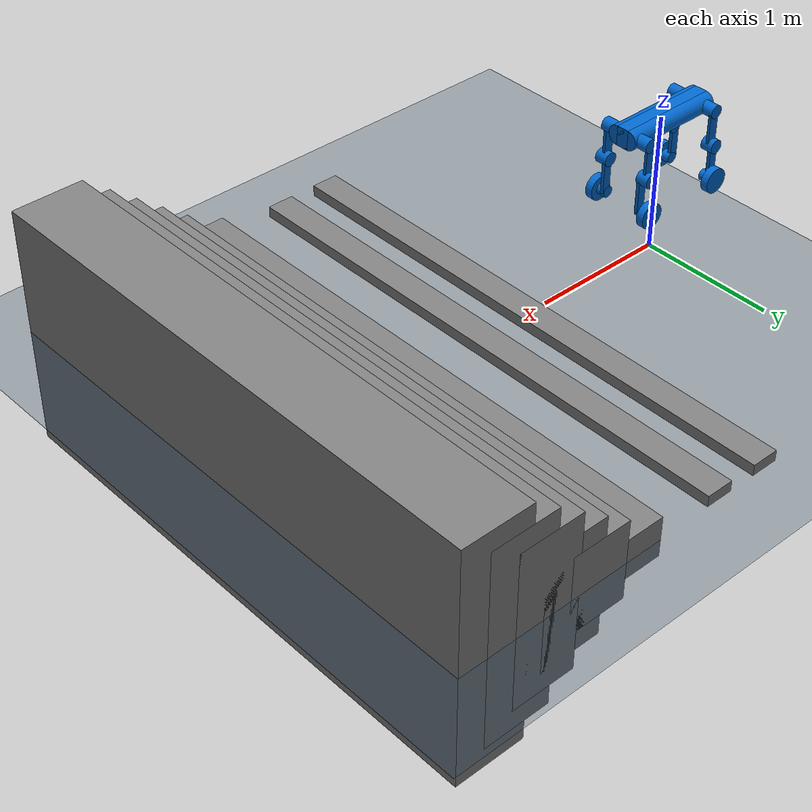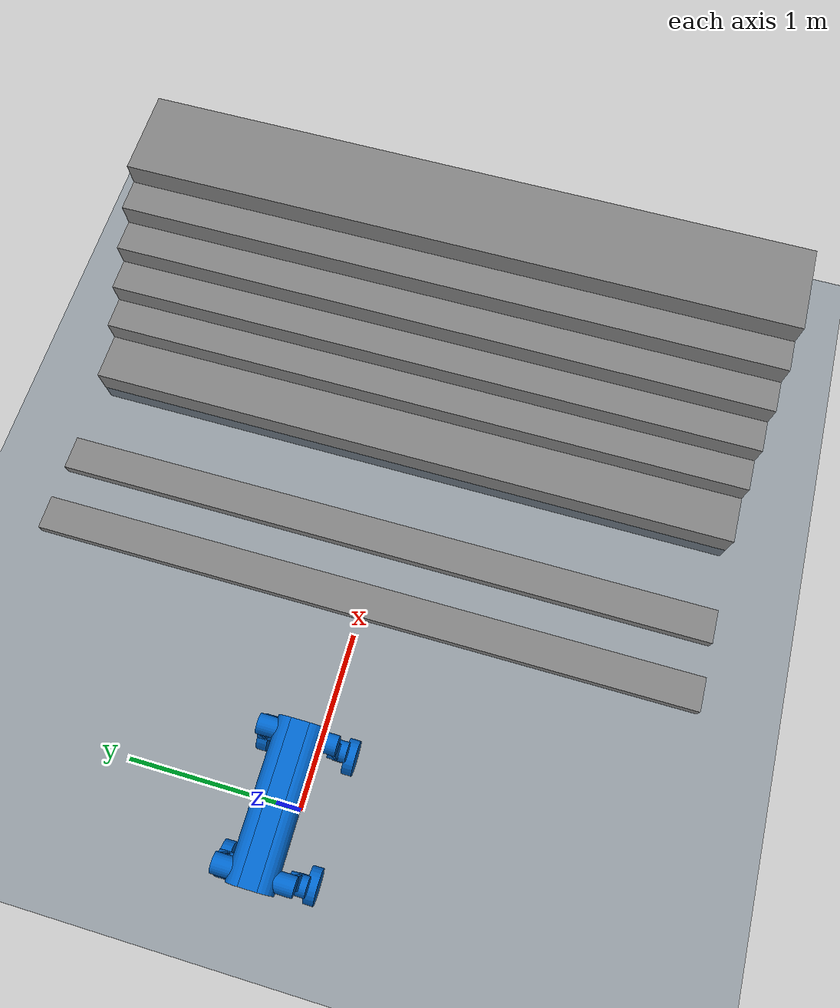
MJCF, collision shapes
<mujoco model="m20 scene">
  <include file="m20.xml"/>

  <statistic center="0 0 0.1" extent="0.8"/>

  <visual>
    <headlight diffuse="0.6 0.6 0.6" ambient="0.3 0.3 0.3" specular="0 0 0"/>
    <rgba haze="0.15 0.25 0.35 1"/>
    <global azimuth="-130" elevation="-20"/>
  </visual>

  <asset>
    <texture type="skybox" builtin="gradient" rgb1="0.3 0.5 0.7" rgb2="0 0 0" width="512" height="3072"/>
    <texture type="2d" name="groundplane" builtin="checker" mark="edge" rgb1="0.2 0.3 0.4" rgb2="0.1 0.2 0.3"
      markrgb="0.8 0.8 0.8" width="300" height="300"/>
    <material name="groundplane" texture="groundplane" texuniform="true" texrepeat="5 5" reflectance="0.2"/>
  </asset>

  <worldbody>
    <light pos="0 0 1.5" dir="0 0 -1" directional="true"/>
    <geom name="floor" size="0 0 0.05" type="plane" material="groundplane"/>

    <geom pos="1.2 0 0.04" type="box"  size="0.1 2 0.04" quat="1.0 0 0 0"/>
    <geom pos="1.6 0 0.04" type="box"  size="0.1 2 0.04" quat="1.0 0 0 0"/>

    <geom pos="2.3 0 0.02" type="box"  size="0.2 2 0.15" quat="1.0 0 0 0"/>
    <geom pos="2.6 0 0.02" type="box"  size="0.22 2 0.3" quat="1.0 0 0 0"/>
    <geom pos="2.8 0 0.02" type="box"  size="0.23 2 0.45" quat="1.0 0 0 0"/>
    <geom pos="3 0 0.02" type="box"  size="0.24 2 0.6" quat="1.0 0 0 0"/>
    <geom pos="3.2 0 0.02" type="box"  size="0.25 2 0.75" quat="1.0 0 0 0"/>
    <geom pos="3.4 0 0.02" type="box"  size="0.26 2 0.9" quat="1.0 0 0 0"/>
  </worldbody>
</mujoco>

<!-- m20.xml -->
<mujoco model="m20">

    <default>
        <default class="robot">
            <default class="motor">
                <joint/>
                <motor/>
            </default>
            <default class="visual">
                <geom material="default_material" contype="0" conaffinity="0" group="2"/>
            </default>
            <default class="collision">
                <geom material="collision_material" condim="3" contype="1" conaffinity="1" solref="0.005 1" friction="1 0.01 0.001" density="0" group="1"/>
            </default>
        </default>
    </default>

    <compiler angle="radian" meshdir="../meshes/"/>
    <compiler autolimits="true"/>

    <asset>
        <material name="default_material" rgba="0.7 0.7 0.7 1"/>
        <material name="collision_material" rgba="0.0 0.4 0.8 0.0"/>
        <mesh name="base_link" file="base_link.STL"/>
        <mesh name="fl_hipx" file="fl_hipx.STL"/>
        <mesh name="fl_hipy" file="fl_hipy.STL"/>
        <mesh name="fl_knee" file="fl_knee.STL"/>
        <mesh name="fl_wheel" file="fl_wheel.STL"/>
        <mesh name="fr_hipx" file="fr_hipx.STL"/>
        <mesh name="fr_hipy" file="fr_hipy.STL"/>
        <mesh name="fr_knee" file="fr_knee.STL"/>
        <mesh name="fr_wheel" file="fr_wheel.STL"/>
        <mesh name="hl_hipx" file="hl_hipx.STL"/>
        <mesh name="hl_hipy" file="hl_hipy.STL"/>
        <mesh name="hl_knee" file="hl_knee.STL"/>
        <mesh name="hl_wheel" file="hl_wheel.STL"/>
        <mesh name="hr_hipx" file="hr_hipx.STL"/>
        <mesh name="hr_hipy" file="hr_hipy.STL"/>
        <mesh name="hr_knee" file="hr_knee.STL"/>
        <mesh name="hr_wheel" file="hr_wheel.STL"/>
        <texture name="texplane" type="2d" builtin="checker" rgb1=".2 .3 .4" rgb2=".1 0.15 0.2" width="512" height="512"/>
        <material name='MatPlane' reflectance='0.3' texture="texplane" texrepeat="1 1" texuniform="true"/>
    </asset>

    <worldbody>
        <body name="base_link" pos="0 0. 1." quat="1 0 0 0" childclass="robot">
            <freejoint name="floating_base"/>
            <inertial pos="0.00355105878308153 0.0016507579200937 -0.00346462146571654" quat="1 0 0 0" mass="15.882" diaginertia="0.087919 0.533522 0.563492"/>

            <site name="imu_site" pos="0.0632 -0.0268 -0.0435" size="0.005" rgba="1 0 0 1"/>
            <site name="base_site" pos="0 0 0" quat="1 0 0 0"/>

            <geom type="mesh" mesh="base_link" class="visual"/>
            <geom size="0.375 0.045 0.07" type="box" class="collision"/>
            <geom size="0.07 0.375" pos="0 0.045 0" quat="0.707107 0 0.707107 0" type="cylinder" class="collision"/>
            <geom size="0.07 0.375" pos="0 -0.045 0" quat="0.707107 0 0.707107 0" type="cylinder" class="collision"/>

            <body name="fl_hipx" pos="0.3141 0.0685 0">
                <inertial pos="-0.0111893 0.00891693 0.000405666" quat="0.581628 0.481707 0.465607 0.461387" mass="0.259964" diaginertia="0.000374402 0.000286289 0.000179309"/>
                <joint name="fl_hipx_joint" pos="0 0 0" axis="1 0 0" range="-0.611 0.436" actuatorfrcrange="-76.4 76.4"/>
                <geom type="mesh" mesh="fl_hipx" class="visual"/>
                <geom size="0.048 0.07" pos="0 0.055 0" quat="0.707107 0.707107 0 0" type="cylinder" class="collision"/>
                <body name="fl_hipy">
                    <inertial pos="-0.00199375 0.098439 -0.130664" quat="0.6754 -0.0565887 0.0622156 0.73264" mass="2.618" diaginertia="0.0410181 0.0408067 0.00297328"/>
                    <joint name="fl_hipy_joint" pos="0 0 0" axis="0 1 0" range="-2.583 2.286" actuatorfrcrange="-76.4 76.4"/>
                    <geom type="mesh" mesh="fl_hipy" class="visual"/>
                    <geom size="0.035 0.01 0.125" pos="-0.01 0.11 -0.125" type="box" class="collision"/>
                    <geom size="0.05 0.045" pos="0 0.11 -0.25" quat="0.707107 0.707107 0 0" type="cylinder" class="collision"/>
                    <body name="fl_knee" pos="0 0.0984 -0.25">
                        <inertial pos="0.00341917 0.00269124 -0.181265" quat="0.633405 -0.0508555 0.0475887 0.77068" mass="1.145" diaginertia="0.0121304 0.0117245 0.000948105"/>
                        <joint name="fl_knee_joint" pos="0 0 0" axis="0 1 0" range="-2.792 2.809" actuatorfrcrange="-76.4 76.4"/>
                        <geom type="mesh" mesh="fl_knee" class="visual"/>
                        <geom size="0.03 0.0125 0.125" pos="0.015 -0.015 -0.125" type="box" class="collision"/>
                        <geom size="0.04 0.05" pos="0 0.02 -0.25" quat="0.707107 0.707107 0 0" type="cylinder" class="collision"/>
                        <body name="fl_wheel" pos="0 0.059676 -0.25">
                            <inertial pos="-3.11398e-07 0.000279002 5.70329e-07" quat="0.707107 0 0 0.707107" mass="0.638" diaginertia="0.002853 0.001535 0.001535"/>
                            <joint name="fl_wheel_joint" pos="0 0 0" axis="0 1 0" actuatorfrcrange="-21.6 21.6"/>
                            <geom type="mesh" mesh="fl_wheel" class="visual"/>
                            <geom size="0.09 0.027" quat="0.707107 0.707107 0 0" type="cylinder" class="collision"/>
                        </body>
                    </body>
                </body>
            </body>
            <body name="fr_hipx" pos="0.3141 -0.0685 0">
                <inertial pos="-0.0110901 -0.00875035 0.000521421" quat="0.461387 0.465607 0.481707 0.581628" mass="0.259964" diaginertia="0.000374402 0.000286289 0.000179309"/>
                <joint name="fr_hipx_joint" pos="0 0 0" axis="1 0 0" range="-0.436 0.611" actuatorfrcrange="-76.4 76.4"/>
                <geom type="mesh" mesh="fr_hipx" class="visual"/>
                <geom size="0.048 0.07" pos="0 -0.055 0" quat="0.707107 0.707107 0 0" type="cylinder" class="collision"/>
                <body name="fr_hipy">
                    <inertial pos="-0.00229992 -0.0989709 -0.130925" quat="0.6964 0.0586688 -0.0587886 0.712831" mass="2.618" diaginertia="0.0407542 0.040538 0.00301281"/>
                    <joint name="fr_hipy_joint" pos="0 0 0" axis="0 1 0" range="-2.583 2.286" actuatorfrcrange="-76.4 76.4"/>
                    <geom type="mesh" mesh="fr_hipy" class="visual"/>
                    <geom size="0.035 0.01 0.125" pos="-0.01 -0.11 -0.125" type="box" class="collision"/>
                    <geom size="0.05 0.045" pos="0 -0.11 -0.25" quat="0.707107 0.707107 0 0" type="cylinder" class="collision"/>
                    <body name="fr_knee" pos="0 -0.0984 -0.25">
                        <inertial pos="0.00354945 -0.00247884 -0.180089" quat="0.769194 0.0472982 -0.0504711 0.635261" mass="1.145" diaginertia="0.0122564 0.0118448 0.000951718"/>
                        <joint name="fr_knee_joint" pos="0 0 0" axis="0 1 0" range="-2.792 2.809" actuatorfrcrange="-76.4 76.4"/>
                        <geom type="mesh" mesh="fr_knee" class="visual"/>
                        <geom size="0.03 0.0125 0.125" pos="0.015 0.015 -0.125" type="box" class="collision"/>
                        <geom size="0.04 0.05" pos="0 -0.02 -0.25" quat="0.707107 0.707107 0 0" type="cylinder" class="collision"/>
                        <body name="fr_wheel" pos="0 -0.059676 -0.25">
                            <inertial pos="-6.47327e-07 -0.000279012 -4.6242e-08" quat="0.707107 0 0 0.707107" mass="0.638" diaginertia="0.002853 0.001535 0.001535"/>
                            <joint name="fr_wheel_joint" pos="0 0 0" axis="0 1 0" actuatorfrcrange="-21.6 21.6"/>
                            <geom type="mesh" mesh="fr_wheel" class="visual"/>
                            <geom size="0.09 0.027" quat="0.707107 0.707107 0 0" type="cylinder" class="collision"/>
                        </body>
                    </body>
                </body>
            </body>
            <body name="hl_hipx" pos="-0.3141 0.0685 0">
                <inertial pos="0.0110901 0.00875014 0.000524884" quat="0.465607 0.461387 0.581628 0.481707" mass="0.259964" diaginertia="0.000374402 0.000286289 0.000179309"/>
                <joint name="hl_hipx_joint" pos="0 0 0" axis="1 0 0" range="-0.611 0.436" actuatorfrcrange="-76.4 76.4"/>
                <geom type="mesh" mesh="hl_hipx" class="visual"/>
                <geom size="0.048 0.07" pos="0 0.055 0" quat="0.707107 0.707107 0 0" type="cylinder" class="collision"/>
                <body name="hl_hipy">
                    <inertial pos="0.00204343 0.0990227 -0.130697" quat="0.750359 -0.0628584 0.0546506 0.655761" mass="2.618" diaginertia="0.0408376 0.0406211 0.00299727"/>
                    <joint name="hl_hipy_joint" pos="0 0 0" axis="0 1 0" range="-2.286 2.583" actuatorfrcrange="-76.4 76.4"/>
                    <geom type="mesh" mesh="hl_hipy" class="visual"/>
                    <geom size="0.035 0.01 0.125" pos="0.01 0.11 -0.125" type="box" class="collision"/>
                    <geom size="0.05 0.045" pos="0 0.11 -0.25" quat="0.707107 0.707107 0 0" type="cylinder" class="collision"/>
                    <body name="hl_knee" pos="0 0.0984 -0.25">
                        <inertial pos="-0.00354945 0.00247885 -0.180089" quat="0.769194 -0.0472982 0.0504711 0.635261" mass="1.145" diaginertia="0.0122564 0.0118448 0.000951718"/>
                        <joint name="hl_knee_joint" pos="0 0 0" axis="0 1 0" range="-2.809 2.792" actuatorfrcrange="-76.4 76.4"/>
                        <geom type="mesh" mesh="hl_knee" class="visual"/>
                        <geom size="0.03 0.0125 0.125" pos="-0.015 0.015 -0.125" type="box" class="collision"/>
                        <geom size="0.04 0.05" pos="0 0.02 -0.25" quat="0.707107 0.707107 0 0" type="cylinder" class="collision"/>
                        <body name="hl_wheel" pos="0 0.059676 -0.25">
                            <inertial pos="-6.07889e-07 0.000279009 2.1049e-07" quat="0.707107 0 0 0.707107" mass="0.638" diaginertia="0.002853 0.001535 0.001535"/>
                            <joint name="hl_wheel_joint" pos="0 0 0" axis="0 1 0" actuatorfrcrange="-21.6 21.6"/>
                            <geom type="mesh" mesh="hl_wheel" class="visual"/>
                            <geom size="0.09 0.027" quat="0.707107 0.707107 0 0" type="cylinder" class="collision"/>
                        </body>
                    </body>
                </body>
            </body>
            <body name="hr_hipx" pos="-0.3141 -0.0685 0">
                <inertial pos="0.0110902 -0.00875012 0.000524937" quat="0.481707 0.581628 0.461387 0.465607" mass="0.259964" diaginertia="0.000374402 0.000286289 0.000179309"/>
                <joint name="hr_hipx_joint" pos="0 0 0" axis="1 0 0" range="-0.436 0.611" actuatorfrcrange="-76.4 76.4"/>
                <geom type="mesh" mesh="hr_hipx" class="visual"/>
                <geom size="0.048 0.07" pos="0 -0.055 0" quat="0.707107 0.707107 0 0" type="cylinder" class="collision"/>
                <body name="hr_hipy">
                    <inertial pos="0.001992 -0.0983704 -0.130561" quat="0.676694 0.0567616 -0.0621797 0.731435" mass="2.618" diaginertia="0.0410109 0.0408028 0.00297526"/>
                    <joint name="hr_hipy_joint" pos="0 0 0" axis="0 1 0" range="-2.286 2.583" actuatorfrcrange="-76.4 76.4"/>
                    <geom type="mesh" mesh="hr_hipy" class="visual"/>
                    <geom size="0.035 0.01 0.125" pos="0.01 -0.11 -0.125" type="box" class="collision"/>
                    <geom size="0.05 0.045" pos="0 -0.11 -0.25" quat="0.707107 0.707107 0 0" type="cylinder" class="collision"/>
                    <body name="hr_knee" pos="0 -0.0984 -0.25">
                        <inertial pos="-0.00341053 -0.00270202 -0.181287" quat="0.63448 0.050937 -0.0475303 0.769793" mass="1.145" diaginertia="0.0121352 0.0117289 0.000948904"/>
                        <joint name="hr_knee_joint" pos="0 0 0" axis="0 1 0" range="-2.809 2.792" actuatorfrcrange="-76.4 76.4"/>
                        <geom type="mesh" mesh="hr_knee" class="visual"/>
                        <geom size="0.03 0.0125 0.125" pos="-0.015 0.015 -0.125" type="box" class="collision"/>
                        <geom size="0.04 0.05" pos="0 -0.02 -0.25" quat="0.707107 0.707107 0 0" type="cylinder" class="collision"/>
                        <body name="hr_wheel" pos="0 -0.059676 -0.25">
                            <inertial pos="6.09746e-07 -0.000279009 2.01314e-07" quat="0.707107 0 0 0.707107" mass="0.638" diaginertia="0.002853 0.001535 0.001535"/>
                            <joint name="hr_wheel_joint" pos="0 0 0" axis="0 1 0" actuatorfrcrange="-21.6 21.6"/>
                            <geom type="mesh" mesh="hr_wheel" class="visual"/>
                            <geom size="0.09 0.027" quat="0.707107 0.707107 0 0" type="cylinder" class="collision"/>
                        </body>
                    </body>
                </body>
            </body>
        </body>
    </worldbody>

    <actuator>
        <motor name="fl_hipx_joint" joint="fl_hipx_joint" ctrllimited="true" ctrlrange="-76.4 76.4" gear="1"/>
        <motor name="fl_hipy_joint" joint="fl_hipy_joint" ctrllimited="true" ctrlrange="-76.4 76.4" gear="1"/>
        <motor name="fl_knee_joint" joint="fl_knee_joint" ctrllimited="true" ctrlrange="-76.4 76.4" gear="1"/>
        <motor name="fr_hipx_joint" joint="fr_hipx_joint" ctrllimited="true" ctrlrange="-76.4 76.4" gear="1"/>
        <motor name="fr_hipy_joint" joint="fr_hipy_joint" ctrllimited="true" ctrlrange="-76.4 76.4" gear="1"/>
        <motor name="fr_knee_joint" joint="fr_knee_joint" ctrllimited="true" ctrlrange="-76.4 76.4" gear="1"/>
        <motor name="hl_hipx_joint" joint="hl_hipx_joint" ctrllimited="true" ctrlrange="-76.4 76.4" gear="1"/>
        <motor name="hl_hipy_joint" joint="hl_hipy_joint" ctrllimited="true" ctrlrange="-76.4 76.4" gear="1"/>
        <motor name="hl_knee_joint" joint="hl_knee_joint" ctrllimited="true" ctrlrange="-76.4 76.4" gear="1"/>
        <motor name="hr_hipx_joint" joint="hr_hipx_joint" ctrllimited="true" ctrlrange="-76.4 76.4" gear="1"/>
        <motor name="hr_hipy_joint" joint="hr_hipy_joint" ctrllimited="true" ctrlrange="-76.4 76.4" gear="1"/>
        <motor name="hr_knee_joint" joint="hr_knee_joint" ctrllimited="true" ctrlrange="-76.4 76.4" gear="1"/>
        <motor name="fl_wheel_joint" joint="fl_wheel_joint" ctrllimited="true" ctrlrange="-21.6 21.6" gear="1"/>
        <motor name="fr_wheel_joint" joint="fr_wheel_joint" ctrllimited="true" ctrlrange="-21.6 21.6" gear="1"/>
        <motor name="hl_wheel_joint" joint="hl_wheel_joint" ctrllimited="true" ctrlrange="-21.6 21.6" gear="1"/>
        <motor name="hr_wheel_joint" joint="hr_wheel_joint" ctrllimited="true" ctrlrange="-21.6 21.6" gear="1"/>

    </actuator>

    <contact>
        <exclude body1="base_link" body2="fl_hipx"/>
        <exclude body1="fl_hipx" body2="fl_hipy"/>
        <exclude body1="fl_hipy" body2="fl_knee"/>
        <exclude body1="fl_knee" body2="fl_wheel"/>
        <exclude body1="base_link" body2="fr_hipx"/>
        <exclude body1="fr_hipx" body2="fr_hipy"/>
        <exclude body1="fr_hipy" body2="fr_knee"/>
        <exclude body1="fr_knee" body2="fr_wheel"/>
        <exclude body1="base_link" body2="hl_hipx"/>
        <exclude body1="hl_hipx" body2="hl_hipy"/>
        <exclude body1="hl_hipy" body2="hl_knee"/>
        <exclude body1="hl_knee" body2="hl_wheel"/>
        <exclude body1="base_link" body2="hr_hipx"/>
        <exclude body1="hr_hipx" body2="hr_hipy"/>
        <exclude body1="hr_hipy" body2="hr_knee"/>
        <exclude body1="hr_knee" body2="hr_wheel"/>

    </contact>

    <sensor>
        <jointpos name="fl_hipx_pos" joint="fl_hipx_joint" />
        <jointpos name="fl_hipy_pos" joint="fl_hipy_joint" />
        <jointpos name="fl_knee_pos" joint="fl_knee_joint" />
        <jointpos name="fr_hipx_pos" joint="fr_hipx_joint" />
        <jointpos name="fr_hipy_pos" joint="fr_hipy_joint" />
        <jointpos name="fr_knee_pos" joint="fr_knee_joint" />
        <jointpos name="hl_hipx_pos" joint="hl_hipx_joint" />
        <jointpos name="hl_hipy_pos" joint="hl_hipy_joint" />
        <jointpos name="hl_knee_pos" joint="hl_knee_joint" />
        <jointpos name="hr_hipx_pos" joint="hr_hipx_joint" />
        <jointpos name="hr_hipy_pos" joint="hr_hipy_joint" />
        <jointpos name="hr_knee_pos" joint="hr_knee_joint" />
        <jointpos name="fl_wheel_pos" joint="fl_wheel_joint" />
        <jointpos name="fr_wheel_pos" joint="fr_wheel_joint" />
        <jointpos name="hl_wheel_pos" joint="hl_wheel_joint" />
        <jointpos name="hr_wheel_pos" joint="hr_wheel_joint" />

        <jointvel name="fl_hipx_vel" joint="fl_hipx_joint" />
        <jointvel name="fl_hipy_vel" joint="fl_hipy_joint" />
        <jointvel name="fl_knee_vel" joint="fl_knee_joint" />
        <jointvel name="fr_hipx_vel" joint="fr_hipx_joint" />
        <jointvel name="fr_hipy_vel" joint="fr_hipy_joint" />
        <jointvel name="fr_knee_vel" joint="fr_knee_joint" />
        <jointvel name="hl_hipx_vel" joint="hl_hipx_joint" />
        <jointvel name="hl_hipy_vel" joint="hl_hipy_joint" />
        <jointvel name="hl_knee_vel" joint="hl_knee_joint" />
        <jointvel name="hr_hipx_vel" joint="hr_hipx_joint" />
        <jointvel name="hr_hipy_vel" joint="hr_hipy_joint" />
        <jointvel name="hr_knee_vel" joint="hr_knee_joint" />
        <jointvel name="fl_wheel_vel" joint="fl_wheel_joint" />
        <jointvel name="fr_wheel_vel" joint="fr_wheel_joint" />
        <jointvel name="hl_wheel_vel" joint="hl_wheel_joint" />
        <jointvel name="hr_wheel_vel" joint="hr_wheel_joint" />

        <jointactuatorfrc name="fl_hipx_torque" joint="fl_hipx_joint" noise="0.01" />
        <jointactuatorfrc name="fl_hipy_torque" joint="fl_hipy_joint" noise="0.01" />
        <jointactuatorfrc name="fl_knee_torque" joint="fl_knee_joint" noise="0.01" />
        <jointactuatorfrc name="fr_hipx_torque" joint="fr_hipx_joint" noise="0.01" />
        <jointactuatorfrc name="fr_hipy_torque" joint="fr_hipy_joint" noise="0.01" />
        <jointactuatorfrc name="fr_knee_torque" joint="fr_knee_joint" noise="0.01" />
        <jointactuatorfrc name="hl_hipx_torque" joint="hl_hipx_joint" noise="0.01" />
        <jointactuatorfrc name="hl_hipy_torque" joint="hl_hipy_joint" noise="0.01" />
        <jointactuatorfrc name="hl_knee_torque" joint="hl_knee_joint" noise="0.01" />
        <jointactuatorfrc name="hr_hipx_torque" joint="hr_hipx_joint" noise="0.01" />
        <jointactuatorfrc name="hr_hipy_torque" joint="hr_hipy_joint" noise="0.01" />
        <jointactuatorfrc name="hr_knee_torque" joint="hr_knee_joint" noise="0.01" />
        <jointactuatorfrc name="fl_wheel_torque" joint="fl_wheel_joint" noise="0.01" />
        <jointactuatorfrc name="fr_wheel_torque" joint="fr_wheel_joint" noise="0.01" />
        <jointactuatorfrc name="hl_wheel_torque" joint="hl_wheel_joint" noise="0.01" />
        <jointactuatorfrc name="hr_wheel_torque" joint="hr_wheel_joint" noise="0.01" />

        <framequat name="base_quat" objtype="site" objname="base_site"/>
        <gyro site="imu_site"/>
        <accelerometer site="imu_site"/>
    </sensor>
    <keyframe>
        <key name="home" qpos="0 0 0.30 1 0 0 0 0 0.9 -1.8 0 0 0.9 -1.8 0 0 -0.9 1.8 0 0 -0.9 1.8 0" ctrl="0 0.9 -1.8 0 0 0.9 -1.8 0 0 -0.9 1.8 0 0 -0.9 1.8 0" />
    </keyframe>
</mujoco>
